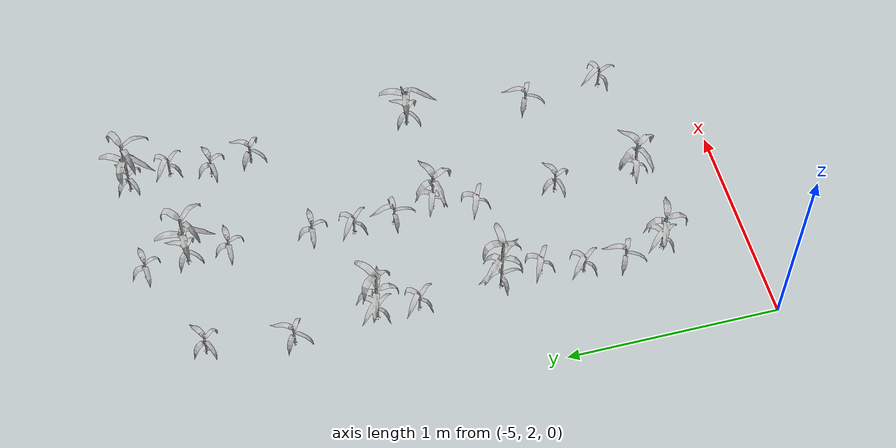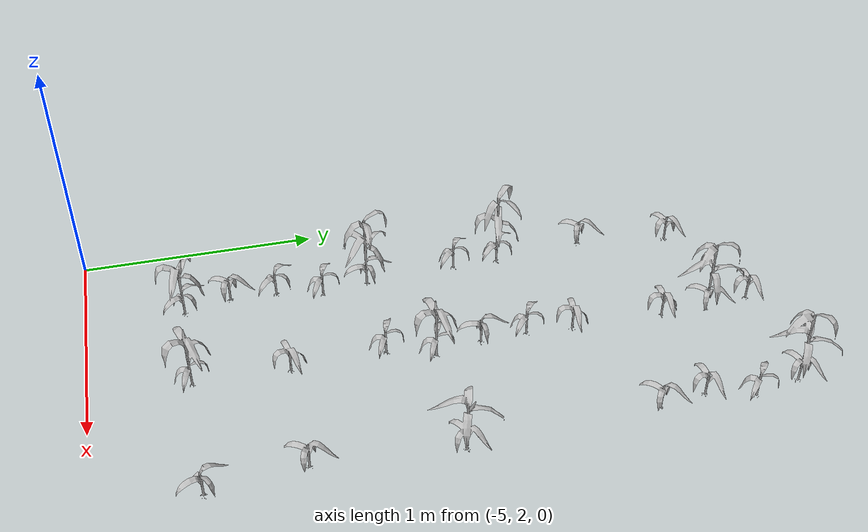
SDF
<sdf version="1.7">
 <world name="default">
  <model name="maize_-4.561645221133806_2.415">
   <static>1</static>
   <link name="link">
    <inertial>
     <mass>0.2</mass>
     <inertia>
      <ixx>0.166667</ixx>
      <ixy>0</ixy>
      <ixz>0</ixz>
      <iyy>0.166667</iyy>
      <iyz>0</iyz>
      <izz>0.166667</izz>
     </inertia>
    </inertial>
    <collision name="collision">
     <geometry><mesh><uri>model://corn_4/meshes/corn.dae</uri><scale>0.25 0.25 0.25</scale></mesh></geometry>
     <surface>
      <friction><ode><mu>0</mu><mu2>0</mu2></ode></friction>
      <contact><ode><kp>0</kp><kd>0</kd><max_vel>0</max_vel><min_depth>0.002</min_depth></ode></contact>
     </surface>
    </collision>
    <visual name="visual">
     <geometry><mesh><uri>model://corn_4/meshes/corn.dae</uri><scale>0.25 0.25 0.25</scale></mesh></geometry>
    </visual>
    <velocity_decay><linear>0</linear><angular>0</angular></velocity_decay>
   </link>
   <pose>-4.56165 2.415 0.05 0 -0 2.25381</pose>
  </model>
  <model name="maize_-4.611175121932313_2.6100000000000003">
   <static>1</static>
   <link name="link">
    <inertial>
     <mass>0.2</mass>
     <inertia>
      <ixx>0.166667</ixx>
      <ixy>0</ixy>
      <ixz>0</ixz>
      <iyy>0.166667</iyy>
      <iyz>0</iyz>
      <izz>0.166667</izz>
     </inertia>
    </inertial>
    <collision name="collision">
     <geometry><mesh><uri>model://corn_3/meshes/corn.dae</uri><scale>0.25 0.25 0.25</scale></mesh></geometry>
     <surface>
      <friction><ode><mu>0</mu><mu2>0</mu2></ode></friction>
      <contact><ode><kp>0</kp><kd>0</kd><max_vel>0</max_vel><min_depth>0.002</min_depth></ode></contact>
     </surface>
    </collision>
    <visual name="visual">
     <geometry><mesh><uri>model://corn_3/meshes/corn.dae</uri><scale>0.25 0.25 0.25</scale></mesh></geometry>
    </visual>
    <velocity_decay><linear>0</linear><angular>0</angular></velocity_decay>
   </link>
   <pose>-4.61118 2.61 0.05 0 -0 1.11839</pose>
  </model>
  <model name="maize_-4.60198826732237_2.8050000000000006">
   <static>1</static>
   <link name="link">
    <inertial>
     <mass>0.2</mass>
     <inertia>
      <ixx>0.166667</ixx>
      <ixy>0</ixy>
      <ixz>0</ixz>
      <iyy>0.166667</iyy>
      <iyz>0</iyz>
      <izz>0.166667</izz>
     </inertia>
    </inertial>
    <collision name="collision">
     <geometry><mesh><uri>model://corn_3/meshes/corn.dae</uri><scale>0.25 0.25 0.25</scale></mesh></geometry>
     <surface>
      <friction><ode><mu>0</mu><mu2>0</mu2></ode></friction>
      <contact><ode><kp>0</kp><kd>0</kd><max_vel>0</max_vel><min_depth>0.002</min_depth></ode></contact>
     </surface>
    </collision>
    <visual name="visual">
     <geometry><mesh><uri>model://corn_3/meshes/corn.dae</uri><scale>0.25 0.25 0.25</scale></mesh></geometry>
    </visual>
    <velocity_decay><linear>0</linear><angular>0</angular></velocity_decay>
   </link>
   <pose>-4.60199 2.805 0.05 0 -0 2.37886</pose>
  </model>
  <model name="maize_-4.553353028584199_3.000000000000001">
   <static>1</static>
   <link name="link">
    <inertial>
     <mass>0.2</mass>
     <inertia>
      <ixx>0.166667</ixx>
      <ixy>0</ixy>
      <ixz>0</ixz>
      <iyy>0.166667</iyy>
      <iyz>0</iyz>
      <izz>0.166667</izz>
     </inertia>
    </inertial>
    <collision name="collision">
     <geometry><mesh><uri>model://corn_3/meshes/corn.dae</uri><scale>0.25 0.25 0.25</scale></mesh></geometry>
     <surface>
      <friction><ode><mu>0</mu><mu2>0</mu2></ode></friction>
      <contact><ode><kp>0</kp><kd>0</kd><max_vel>0</max_vel><min_depth>0.002</min_depth></ode></contact>
     </surface>
    </collision>
    <visual name="visual">
     <geometry><mesh><uri>model://corn_3/meshes/corn.dae</uri><scale>0.25 0.25 0.25</scale></mesh></geometry>
    </visual>
    <velocity_decay><linear>0</linear><angular>0</angular></velocity_decay>
   </link>
   <pose>-4.55335 3 0.05 0 -0 2.72671</pose>
  </model>
  <model name="maize_-4.583404590921548_3.1950000000000003">
   <static>1</static>
   <link name="link">
    <inertial>
     <mass>0.2</mass>
     <inertia>
      <ixx>0.166667</ixx>
      <ixy>0</ixy>
      <ixz>0</ixz>
      <iyy>0.166667</iyy>
      <iyz>0</iyz>
      <izz>0.166667</izz>
     </inertia>
    </inertial>
    <collision name="collision">
     <geometry><mesh><uri>model://corn_5/meshes/corn.dae</uri><scale>0.25 0.25 0.25</scale></mesh></geometry>
     <surface>
      <friction><ode><mu>0</mu><mu2>0</mu2></ode></friction>
      <contact><ode><kp>0</kp><kd>0</kd><max_vel>0</max_vel><min_depth>0.002</min_depth></ode></contact>
     </surface>
    </collision>
    <visual name="visual">
     <geometry><mesh><uri>model://corn_5/meshes/corn.dae</uri><scale>0.25 0.25 0.25</scale></mesh></geometry>
    </visual>
    <velocity_decay><linear>0</linear><angular>0</angular></velocity_decay>
   </link>
   <pose>-4.5834 3.195 0.05 0 -0 1.78275</pose>
  </model>
  <model name="maize_-4.60732220704893_3.585">
   <static>1</static>
   <link name="link">
    <inertial>
     <mass>0.2</mass>
     <inertia>
      <ixx>0.166667</ixx>
      <ixy>0</ixy>
      <ixz>0</ixz>
      <iyy>0.166667</iyy>
      <iyz>0</iyz>
      <izz>0.166667</izz>
     </inertia>
    </inertial>
    <collision name="collision">
     <geometry><mesh><uri>model://corn_3/meshes/corn.dae</uri><scale>0.25 0.25 0.25</scale></mesh></geometry>
     <surface>
      <friction><ode><mu>0</mu><mu2>0</mu2></ode></friction>
      <contact><ode><kp>0</kp><kd>0</kd><max_vel>0</max_vel><min_depth>0.002</min_depth></ode></contact>
     </surface>
    </collision>
    <visual name="visual">
     <geometry><mesh><uri>model://corn_3/meshes/corn.dae</uri><scale>0.25 0.25 0.25</scale></mesh></geometry>
    </visual>
    <velocity_decay><linear>0</linear><angular>0</angular></velocity_decay>
   </link>
   <pose>-4.60732 3.585 0.05 0 -0 2.44633</pose>
  </model>
  <model name="maize_-4.606918043627587_3.7800000000000002">
   <static>1</static>
   <link name="link">
    <inertial>
     <mass>0.2</mass>
     <inertia>
      <ixx>0.166667</ixx>
      <ixy>0</ixy>
      <ixz>0</ixz>
      <iyy>0.166667</iyy>
      <iyz>0</iyz>
      <izz>0.166667</izz>
     </inertia>
    </inertial>
    <collision name="collision">
     <geometry><mesh><uri>model://corn_5/meshes/corn.dae</uri><scale>0.25 0.25 0.25</scale></mesh></geometry>
     <surface>
      <friction><ode><mu>0</mu><mu2>0</mu2></ode></friction>
      <contact><ode><kp>0</kp><kd>0</kd><max_vel>0</max_vel><min_depth>0.002</min_depth></ode></contact>
     </surface>
    </collision>
    <visual name="visual">
     <geometry><mesh><uri>model://corn_5/meshes/corn.dae</uri><scale>0.25 0.25 0.25</scale></mesh></geometry>
    </visual>
    <velocity_decay><linear>0</linear><angular>0</angular></velocity_decay>
   </link>
   <pose>-4.60692 3.78 0.05 0 -0 2.33608</pose>
  </model>
  <model name="maize_-4.648658478155066_4.170000000000001">
   <static>1</static>
   <link name="link">
    <inertial>
     <mass>0.2</mass>
     <inertia>
      <ixx>0.166667</ixx>
      <ixy>0</ixy>
      <ixz>0</ixz>
      <iyy>0.166667</iyy>
      <iyz>0</iyz>
      <izz>0.166667</izz>
     </inertia>
    </inertial>
    <collision name="collision">
     <geometry><mesh><uri>model://corn_3/meshes/corn.dae</uri><scale>0.25 0.25 0.25</scale></mesh></geometry>
     <surface>
      <friction><ode><mu>0</mu><mu2>0</mu2></ode></friction>
      <contact><ode><kp>0</kp><kd>0</kd><max_vel>0</max_vel><min_depth>0.002</min_depth></ode></contact>
     </surface>
    </collision>
    <visual name="visual">
     <geometry><mesh><uri>model://corn_3/meshes/corn.dae</uri><scale>0.25 0.25 0.25</scale></mesh></geometry>
    </visual>
    <velocity_decay><linear>0</linear><angular>0</angular></velocity_decay>
   </link>
   <pose>-4.64866 4.17 0.05 0 -0 0.974294</pose>
  </model>
  <model name="maize_-4.590385073075929_4.56">
   <static>1</static>
   <link name="link">
    <inertial>
     <mass>0.2</mass>
     <inertia>
      <ixx>0.166667</ixx>
      <ixy>0</ixy>
      <ixz>0</ixz>
      <iyy>0.166667</iyy>
      <iyz>0</iyz>
      <izz>0.166667</izz>
     </inertia>
    </inertial>
    <collision name="collision">
     <geometry><mesh><uri>model://corn_3/meshes/corn.dae</uri><scale>0.25 0.25 0.25</scale></mesh></geometry>
     <surface>
      <friction><ode><mu>0</mu><mu2>0</mu2></ode></friction>
      <contact><ode><kp>0</kp><kd>0</kd><max_vel>0</max_vel><min_depth>0.002</min_depth></ode></contact>
     </surface>
    </collision>
    <visual name="visual">
     <geometry><mesh><uri>model://corn_3/meshes/corn.dae</uri><scale>0.25 0.25 0.25</scale></mesh></geometry>
    </visual>
    <velocity_decay><linear>0</linear><angular>0</angular></velocity_decay>
   </link>
   <pose>-4.59039 4.56 0.05 0 -0 0.494494</pose>
  </model>
  <model name="maize_-4.138119326774327_2.415">
   <static>1</static>
   <link name="link">
    <inertial>
     <mass>0.2</mass>
     <inertia>
      <ixx>0.166667</ixx>
      <ixy>0</ixy>
      <ixz>0</ixz>
      <iyy>0.166667</iyy>
      <iyz>0</iyz>
      <izz>0.166667</izz>
     </inertia>
    </inertial>
    <collision name="collision">
     <geometry><mesh><uri>model://corn_4/meshes/corn.dae</uri><scale>0.25 0.25 0.25</scale></mesh></geometry>
     <surface>
      <friction><ode><mu>0</mu><mu2>0</mu2></ode></friction>
      <contact><ode><kp>0</kp><kd>0</kd><max_vel>0</max_vel><min_depth>0.002</min_depth></ode></contact>
     </surface>
    </collision>
    <visual name="visual">
     <geometry><mesh><uri>model://corn_4/meshes/corn.dae</uri><scale>0.25 0.25 0.25</scale></mesh></geometry>
    </visual>
    <velocity_decay><linear>0</linear><angular>0</angular></velocity_decay>
   </link>
   <pose>-4.13812 2.415 0.05 0 -0 2.92729</pose>
  </model>
  <model name="maize_-4.1298189719988985_2.8050000000000006">
   <static>1</static>
   <link name="link">
    <inertial>
     <mass>0.2</mass>
     <inertia>
      <ixx>0.166667</ixx>
      <ixy>0</ixy>
      <ixz>0</ixz>
      <iyy>0.166667</iyy>
      <iyz>0</iyz>
      <izz>0.166667</izz>
     </inertia>
    </inertial>
    <collision name="collision">
     <geometry><mesh><uri>model://corn_3/meshes/corn.dae</uri><scale>0.25 0.25 0.25</scale></mesh></geometry>
     <surface>
      <friction><ode><mu>0</mu><mu2>0</mu2></ode></friction>
      <contact><ode><kp>0</kp><kd>0</kd><max_vel>0</max_vel><min_depth>0.002</min_depth></ode></contact>
     </surface>
    </collision>
    <visual name="visual">
     <geometry><mesh><uri>model://corn_3/meshes/corn.dae</uri><scale>0.25 0.25 0.25</scale></mesh></geometry>
    </visual>
    <velocity_decay><linear>0</linear><angular>0</angular></velocity_decay>
   </link>
   <pose>-4.12982 2.805 0.05 0 -0 0.313837</pose>
  </model>
  <model name="maize_-4.1466612816166455_3.1950000000000003">
   <static>1</static>
   <link name="link">
    <inertial>
     <mass>0.2</mass>
     <inertia>
      <ixx>0.166667</ixx>
      <ixy>0</ixy>
      <ixz>0</ixz>
      <iyy>0.166667</iyy>
      <iyz>0</iyz>
      <izz>0.166667</izz>
     </inertia>
    </inertial>
    <collision name="collision">
     <geometry><mesh><uri>model://corn_3/meshes/corn.dae</uri><scale>0.25 0.25 0.25</scale></mesh></geometry>
     <surface>
      <friction><ode><mu>0</mu><mu2>0</mu2></ode></friction>
      <contact><ode><kp>0</kp><kd>0</kd><max_vel>0</max_vel><min_depth>0.002</min_depth></ode></contact>
     </surface>
    </collision>
    <visual name="visual">
     <geometry><mesh><uri>model://corn_3/meshes/corn.dae</uri><scale>0.25 0.25 0.25</scale></mesh></geometry>
    </visual>
    <velocity_decay><linear>0</linear><angular>0</angular></velocity_decay>
   </link>
   <pose>-4.14666 3.195 0.05 0 -0 2.81319</pose>
  </model>
  <model name="maize_-4.084067332350931_3.3899999999999997">
   <static>1</static>
   <link name="link">
    <inertial>
     <mass>0.2</mass>
     <inertia>
      <ixx>0.166667</ixx>
      <ixy>0</ixy>
      <ixz>0</ixz>
      <iyy>0.166667</iyy>
      <iyz>0</iyz>
      <izz>0.166667</izz>
     </inertia>
    </inertial>
    <collision name="collision">
     <geometry><mesh><uri>model://corn_4/meshes/corn.dae</uri><scale>0.25 0.25 0.25</scale></mesh></geometry>
     <surface>
      <friction><ode><mu>0</mu><mu2>0</mu2></ode></friction>
      <contact><ode><kp>0</kp><kd>0</kd><max_vel>0</max_vel><min_depth>0.002</min_depth></ode></contact>
     </surface>
    </collision>
    <visual name="visual">
     <geometry><mesh><uri>model://corn_4/meshes/corn.dae</uri><scale>0.25 0.25 0.25</scale></mesh></geometry>
    </visual>
    <velocity_decay><linear>0</linear><angular>0</angular></velocity_decay>
   </link>
   <pose>-4.08407 3.39 0.05 0 -0 2.80977</pose>
  </model>
  <model name="maize_-4.122953181523201_3.585">
   <static>1</static>
   <link name="link">
    <inertial>
     <mass>0.2</mass>
     <inertia>
      <ixx>0.166667</ixx>
      <ixy>0</ixy>
      <ixz>0</ixz>
      <iyy>0.166667</iyy>
      <iyz>0</iyz>
      <izz>0.166667</izz>
     </inertia>
    </inertial>
    <collision name="collision">
     <geometry><mesh><uri>model://corn_3/meshes/corn.dae</uri><scale>0.25 0.25 0.25</scale></mesh></geometry>
     <surface>
      <friction><ode><mu>0</mu><mu2>0</mu2></ode></friction>
      <contact><ode><kp>0</kp><kd>0</kd><max_vel>0</max_vel><min_depth>0.002</min_depth></ode></contact>
     </surface>
    </collision>
    <visual name="visual">
     <geometry><mesh><uri>model://corn_3/meshes/corn.dae</uri><scale>0.25 0.25 0.25</scale></mesh></geometry>
    </visual>
    <velocity_decay><linear>0</linear><angular>0</angular></velocity_decay>
   </link>
   <pose>-4.12295 3.585 0.05 0 -0 1.57021</pose>
  </model>
  <model name="maize_-4.12887722162005_3.7800000000000002">
   <static>1</static>
   <link name="link">
    <inertial>
     <mass>0.2</mass>
     <inertia>
      <ixx>0.166667</ixx>
      <ixy>0</ixy>
      <ixz>0</ixz>
      <iyy>0.166667</iyy>
      <iyz>0</iyz>
      <izz>0.166667</izz>
     </inertia>
    </inertial>
    <collision name="collision">
     <geometry><mesh><uri>model://corn_3/meshes/corn.dae</uri><scale>0.25 0.25 0.25</scale></mesh></geometry>
     <surface>
      <friction><ode><mu>0</mu><mu2>0</mu2></ode></friction>
      <contact><ode><kp>0</kp><kd>0</kd><max_vel>0</max_vel><min_depth>0.002</min_depth></ode></contact>
     </surface>
    </collision>
    <visual name="visual">
     <geometry><mesh><uri>model://corn_3/meshes/corn.dae</uri><scale>0.25 0.25 0.25</scale></mesh></geometry>
    </visual>
    <velocity_decay><linear>0</linear><angular>0</angular></velocity_decay>
   </link>
   <pose>-4.12888 3.78 0.05 0 -0 2.5191</pose>
  </model>
  <model name="maize_-4.118425311858209_3.9750000000000005">
   <static>1</static>
   <link name="link">
    <inertial>
     <mass>0.2</mass>
     <inertia>
      <ixx>0.166667</ixx>
      <ixy>0</ixy>
      <ixz>0</ixz>
      <iyy>0.166667</iyy>
      <iyz>0</iyz>
      <izz>0.166667</izz>
     </inertia>
    </inertial>
    <collision name="collision">
     <geometry><mesh><uri>model://corn_3/meshes/corn.dae</uri><scale>0.25 0.25 0.25</scale></mesh></geometry>
     <surface>
      <friction><ode><mu>0</mu><mu2>0</mu2></ode></friction>
      <contact><ode><kp>0</kp><kd>0</kd><max_vel>0</max_vel><min_depth>0.002</min_depth></ode></contact>
     </surface>
    </collision>
    <visual name="visual">
     <geometry><mesh><uri>model://corn_3/meshes/corn.dae</uri><scale>0.25 0.25 0.25</scale></mesh></geometry>
    </visual>
    <velocity_decay><linear>0</linear><angular>0</angular></velocity_decay>
   </link>
   <pose>-4.11843 3.975 0.05 0 -0 0.003005</pose>
  </model>
  <model name="maize_-4.111348501929236_4.365000000000001">
   <static>1</static>
   <link name="link">
    <inertial>
     <mass>0.2</mass>
     <inertia>
      <ixx>0.166667</ixx>
      <ixy>0</ixy>
      <ixz>0</ixz>
      <iyy>0.166667</iyy>
      <iyz>0</iyz>
      <izz>0.166667</izz>
     </inertia>
    </inertial>
    <collision name="collision">
     <geometry><mesh><uri>model://corn_3/meshes/corn.dae</uri><scale>0.25 0.25 0.25</scale></mesh></geometry>
     <surface>
      <friction><ode><mu>0</mu><mu2>0</mu2></ode></friction>
      <contact><ode><kp>0</kp><kd>0</kd><max_vel>0</max_vel><min_depth>0.002</min_depth></ode></contact>
     </surface>
    </collision>
    <visual name="visual">
     <geometry><mesh><uri>model://corn_3/meshes/corn.dae</uri><scale>0.25 0.25 0.25</scale></mesh></geometry>
    </visual>
    <velocity_decay><linear>0</linear><angular>0</angular></velocity_decay>
   </link>
   <pose>-4.11135 4.365 0.05 0 -0 0.089231</pose>
  </model>
  <model name="maize_-4.102926506849798_4.56">
   <static>1</static>
   <link name="link">
    <inertial>
     <mass>0.2</mass>
     <inertia>
      <ixx>0.166667</ixx>
      <ixy>0</ixy>
      <ixz>0</ixz>
      <iyy>0.166667</iyy>
      <iyz>0</iyz>
      <izz>0.166667</izz>
     </inertia>
    </inertial>
    <collision name="collision">
     <geometry><mesh><uri>model://corn_5/meshes/corn.dae</uri><scale>0.25 0.25 0.25</scale></mesh></geometry>
     <surface>
      <friction><ode><mu>0</mu><mu2>0</mu2></ode></friction>
      <contact><ode><kp>0</kp><kd>0</kd><max_vel>0</max_vel><min_depth>0.002</min_depth></ode></contact>
     </surface>
    </collision>
    <visual name="visual">
     <geometry><mesh><uri>model://corn_5/meshes/corn.dae</uri><scale>0.25 0.25 0.25</scale></mesh></geometry>
    </visual>
    <velocity_decay><linear>0</linear><angular>0</angular></velocity_decay>
   </link>
   <pose>-4.10293 4.56 0.05 0 -0 0.901334</pose>
  </model>
  <model name="maize_-4.136183275801667_4.755">
   <static>1</static>
   <link name="link">
    <inertial>
     <mass>0.2</mass>
     <inertia>
      <ixx>0.166667</ixx>
      <ixy>0</ixy>
      <ixz>0</ixz>
      <iyy>0.166667</iyy>
      <iyz>0</iyz>
      <izz>0.166667</izz>
     </inertia>
    </inertial>
    <collision name="collision">
     <geometry><mesh><uri>model://corn_3/meshes/corn.dae</uri><scale>0.25 0.25 0.25</scale></mesh></geometry>
     <surface>
      <friction><ode><mu>0</mu><mu2>0</mu2></ode></friction>
      <contact><ode><kp>0</kp><kd>0</kd><max_vel>0</max_vel><min_depth>0.002</min_depth></ode></contact>
     </surface>
    </collision>
    <visual name="visual">
     <geometry><mesh><uri>model://corn_3/meshes/corn.dae</uri><scale>0.25 0.25 0.25</scale></mesh></geometry>
    </visual>
    <velocity_decay><linear>0</linear><angular>0</angular></velocity_decay>
   </link>
   <pose>-4.13618 4.755 0.05 0 -0 0.169606</pose>
  </model>
  <model name="maize_-3.570458589255057_2.415">
   <static>1</static>
   <link name="link">
    <inertial>
     <mass>0.2</mass>
     <inertia>
      <ixx>0.166667</ixx>
      <ixy>0</ixy>
      <ixz>0</ixz>
      <iyy>0.166667</iyy>
      <iyz>0</iyz>
      <izz>0.166667</izz>
     </inertia>
    </inertial>
    <collision name="collision">
     <geometry><mesh><uri>model://corn_3/meshes/corn.dae</uri><scale>0.25 0.25 0.25</scale></mesh></geometry>
     <surface>
      <friction><ode><mu>0</mu><mu2>0</mu2></ode></friction>
      <contact><ode><kp>0</kp><kd>0</kd><max_vel>0</max_vel><min_depth>0.002</min_depth></ode></contact>
     </surface>
    </collision>
    <visual name="visual">
     <geometry><mesh><uri>model://corn_3/meshes/corn.dae</uri><scale>0.25 0.25 0.25</scale></mesh></geometry>
    </visual>
    <velocity_decay><linear>0</linear><angular>0</angular></velocity_decay>
   </link>
   <pose>-3.57046 2.415 0.05 0 -0 2.05144</pose>
  </model>
  <model name="maize_-3.6178672164696395_2.8050000000000006">
   <static>1</static>
   <link name="link">
    <inertial>
     <mass>0.2</mass>
     <inertia>
      <ixx>0.166667</ixx>
      <ixy>0</ixy>
      <ixz>0</ixz>
      <iyy>0.166667</iyy>
      <iyz>0</iyz>
      <izz>0.166667</izz>
     </inertia>
    </inertial>
    <collision name="collision">
     <geometry><mesh><uri>model://corn_3/meshes/corn.dae</uri><scale>0.25 0.25 0.25</scale></mesh></geometry>
     <surface>
      <friction><ode><mu>0</mu><mu2>0</mu2></ode></friction>
      <contact><ode><kp>0</kp><kd>0</kd><max_vel>0</max_vel><min_depth>0.002</min_depth></ode></contact>
     </surface>
    </collision>
    <visual name="visual">
     <geometry><mesh><uri>model://corn_3/meshes/corn.dae</uri><scale>0.25 0.25 0.25</scale></mesh></geometry>
    </visual>
    <velocity_decay><linear>0</linear><angular>0</angular></velocity_decay>
   </link>
   <pose>-3.61787 2.805 0.05 0 -0 1.11616</pose>
  </model>
  <model name="maize_-3.570206341437432_3.3899999999999997">
   <static>1</static>
   <link name="link">
    <inertial>
     <mass>0.2</mass>
     <inertia>
      <ixx>0.166667</ixx>
      <ixy>0</ixy>
      <ixz>0</ixz>
      <iyy>0.166667</iyy>
      <iyz>0</iyz>
      <izz>0.166667</izz>
     </inertia>
    </inertial>
    <collision name="collision">
     <geometry><mesh><uri>model://corn_4/meshes/corn.dae</uri><scale>0.25 0.25 0.25</scale></mesh></geometry>
     <surface>
      <friction><ode><mu>0</mu><mu2>0</mu2></ode></friction>
      <contact><ode><kp>0</kp><kd>0</kd><max_vel>0</max_vel><min_depth>0.002</min_depth></ode></contact>
     </surface>
    </collision>
    <visual name="visual">
     <geometry><mesh><uri>model://corn_4/meshes/corn.dae</uri><scale>0.25 0.25 0.25</scale></mesh></geometry>
    </visual>
    <velocity_decay><linear>0</linear><angular>0</angular></velocity_decay>
   </link>
   <pose>-3.57021 3.39 0.05 0 -0 0.649947</pose>
  </model>
  <model name="maize_-3.6097157554857393_4.170000000000001">
   <static>1</static>
   <link name="link">
    <inertial>
     <mass>0.2</mass>
     <inertia>
      <ixx>0.166667</ixx>
      <ixy>0</ixy>
      <ixz>0</ixz>
      <iyy>0.166667</iyy>
      <iyz>0</iyz>
      <izz>0.166667</izz>
     </inertia>
    </inertial>
    <collision name="collision">
     <geometry><mesh><uri>model://corn_3/meshes/corn.dae</uri><scale>0.25 0.25 0.25</scale></mesh></geometry>
     <surface>
      <friction><ode><mu>0</mu><mu2>0</mu2></ode></friction>
      <contact><ode><kp>0</kp><kd>0</kd><max_vel>0</max_vel><min_depth>0.002</min_depth></ode></contact>
     </surface>
    </collision>
    <visual name="visual">
     <geometry><mesh><uri>model://corn_3/meshes/corn.dae</uri><scale>0.25 0.25 0.25</scale></mesh></geometry>
    </visual>
    <velocity_decay><linear>0</linear><angular>0</angular></velocity_decay>
   </link>
   <pose>-3.60972 4.17 0.05 0 -0 0.881384</pose>
  </model>
  <model name="maize_-3.638482563899061_4.365000000000001">
   <static>1</static>
   <link name="link">
    <inertial>
     <mass>0.2</mass>
     <inertia>
      <ixx>0.166667</ixx>
      <ixy>0</ixy>
      <ixz>0</ixz>
      <iyy>0.166667</iyy>
      <iyz>0</iyz>
      <izz>0.166667</izz>
     </inertia>
    </inertial>
    <collision name="collision">
     <geometry><mesh><uri>model://corn_3/meshes/corn.dae</uri><scale>0.25 0.25 0.25</scale></mesh></geometry>
     <surface>
      <friction><ode><mu>0</mu><mu2>0</mu2></ode></friction>
      <contact><ode><kp>0</kp><kd>0</kd><max_vel>0</max_vel><min_depth>0.002</min_depth></ode></contact>
     </surface>
    </collision>
    <visual name="visual">
     <geometry><mesh><uri>model://corn_3/meshes/corn.dae</uri><scale>0.25 0.25 0.25</scale></mesh></geometry>
    </visual>
    <velocity_decay><linear>0</linear><angular>0</angular></velocity_decay>
   </link>
   <pose>-3.63848 4.365 0.05 0 -0 0.254518</pose>
  </model>
  <model name="maize_-3.5890398167460185_4.56">
   <static>1</static>
   <link name="link">
    <inertial>
     <mass>0.2</mass>
     <inertia>
      <ixx>0.166667</ixx>
      <ixy>0</ixy>
      <ixz>0</ixz>
      <iyy>0.166667</iyy>
      <iyz>0</iyz>
      <izz>0.166667</izz>
     </inertia>
    </inertial>
    <collision name="collision">
     <geometry><mesh><uri>model://corn_3/meshes/corn.dae</uri><scale>0.25 0.25 0.25</scale></mesh></geometry>
     <surface>
      <friction><ode><mu>0</mu><mu2>0</mu2></ode></friction>
      <contact><ode><kp>0</kp><kd>0</kd><max_vel>0</max_vel><min_depth>0.002</min_depth></ode></contact>
     </surface>
    </collision>
    <visual name="visual">
     <geometry><mesh><uri>model://corn_3/meshes/corn.dae</uri><scale>0.25 0.25 0.25</scale></mesh></geometry>
    </visual>
    <velocity_decay><linear>0</linear><angular>0</angular></velocity_decay>
   </link>
   <pose>-3.58904 4.56 0.05 0 -0 2.51077</pose>
  </model>
  <model name="maize_-3.630961164199017_4.755">
   <static>1</static>
   <link name="link">
    <inertial>
     <mass>0.2</mass>
     <inertia>
      <ixx>0.166667</ixx>
      <ixy>0</ixy>
      <ixz>0</ixz>
      <iyy>0.166667</iyy>
      <iyz>0</iyz>
      <izz>0.166667</izz>
     </inertia>
    </inertial>
    <collision name="collision">
     <geometry><mesh><uri>model://corn_5/meshes/corn.dae</uri><scale>0.25 0.25 0.25</scale></mesh></geometry>
     <surface>
      <friction><ode><mu>0</mu><mu2>0</mu2></ode></friction>
      <contact><ode><kp>0</kp><kd>0</kd><max_vel>0</max_vel><min_depth>0.002</min_depth></ode></contact>
     </surface>
    </collision>
    <visual name="visual">
     <geometry><mesh><uri>model://corn_5/meshes/corn.dae</uri><scale>0.25 0.25 0.25</scale></mesh></geometry>
    </visual>
    <velocity_decay><linear>0</linear><angular>0</angular></velocity_decay>
   </link>
   <pose>-3.63096 4.755 0.05 0 -0 0.511651</pose>
  </model>
 </world>
</sdf>
